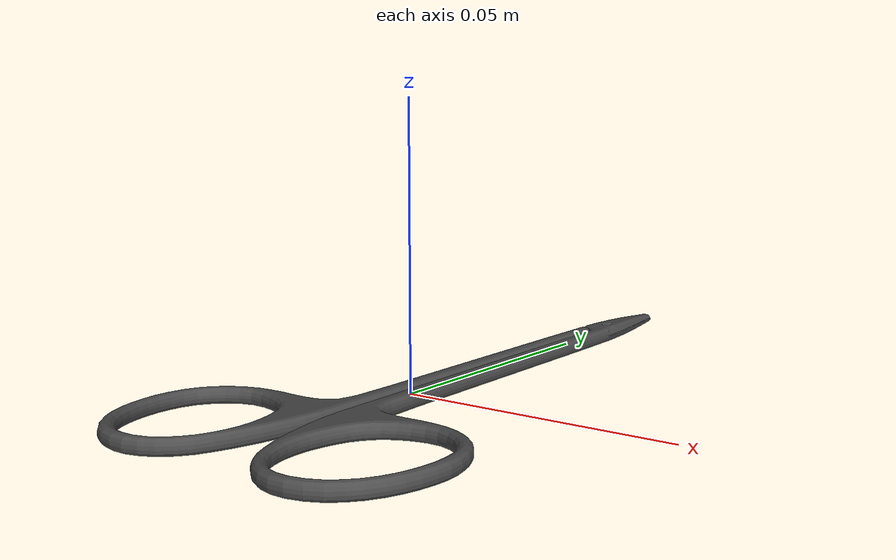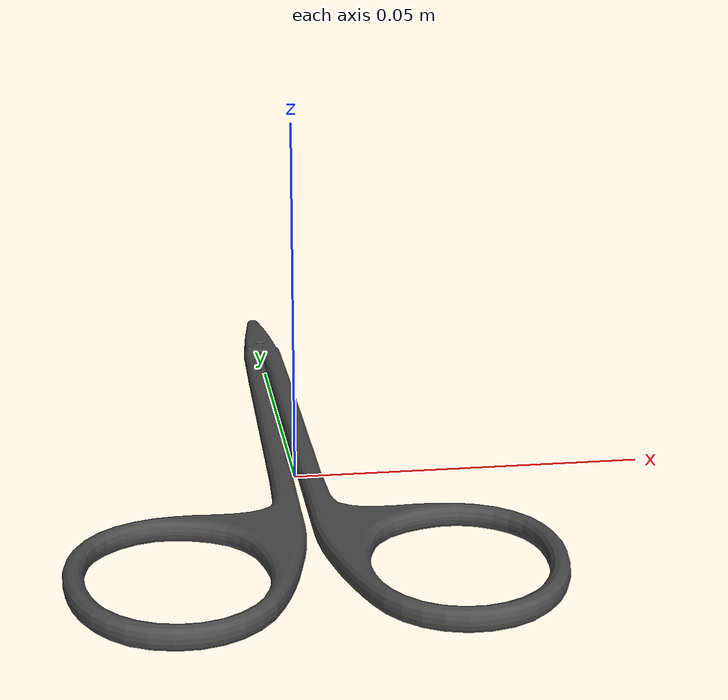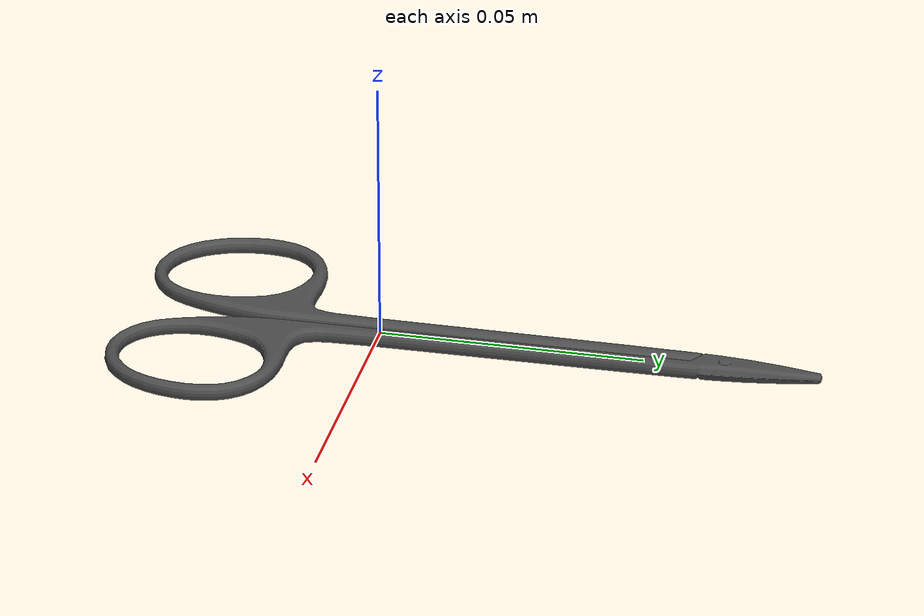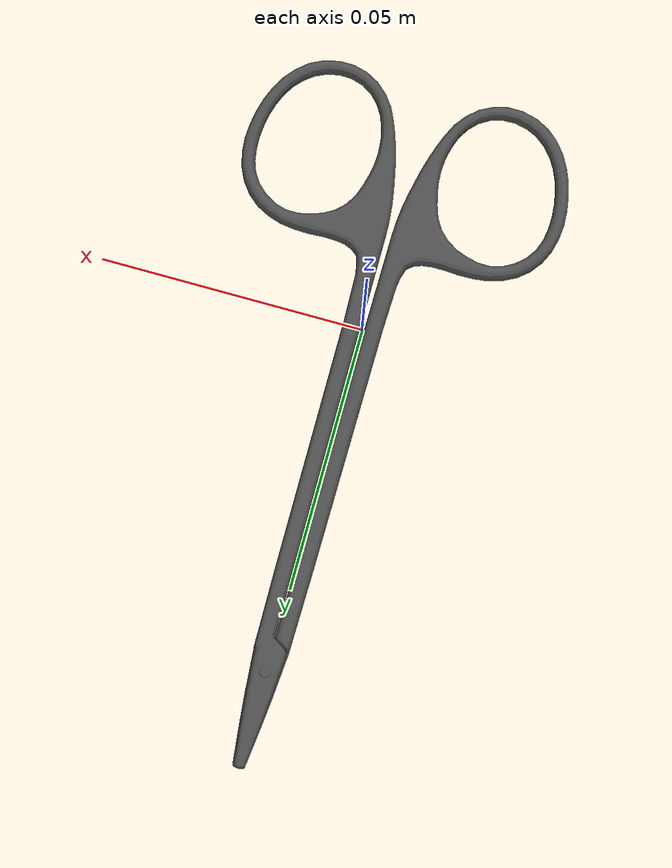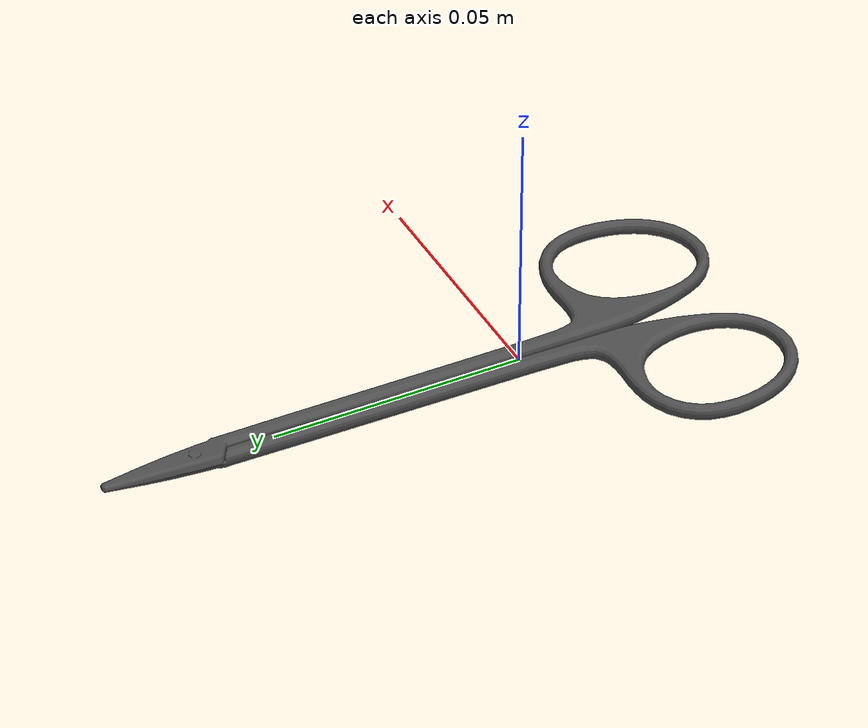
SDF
<?xml version="1.0"?>
<sdf version="1.9">
  <model name="scissors">
    <static>false</static>
    <self_collide>false</self_collide>

    <link name="link">
      <inertial>
        <mass>0.02416</mass>
        <inertia>
          <ixx>0.0000300429</ixx>
          <ixy>0.0000000000</ixy>
          <ixz>0.0000000000</ixz>
          <iyy>0.0000066283</iyy>
          <iyz>0.0000000000</iyz>
          <izz>0.0000350602</izz>
        </inertia>
      </inertial>

      <collision name="collision">
        <geometry>
          <mesh>
            <uri>model://thesis/DAE/Scissors/ScissorsCollision20.dae</uri>
            <scale>1 1 1</scale>
          </mesh>
        </geometry>
        <surface>
          <contact>
            <ode>
              <max_vel>0.01</max_vel>
            </ode>
          </contact>
        </surface>
      </collision>

      <visual name="visual">
        <geometry>
          <mesh>
            <uri>model://thesis/DAE/Scissors/Scissors.dae</uri>
          </mesh>
        </geometry>
      </visual>
    </link>
  </model>
</sdf>
